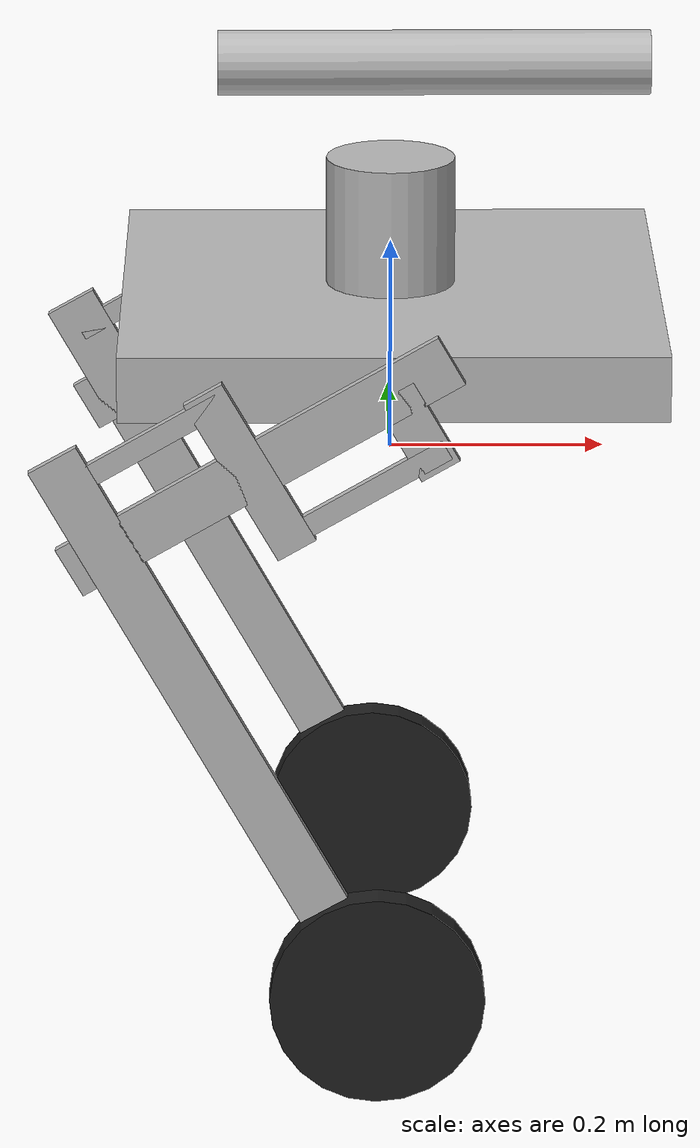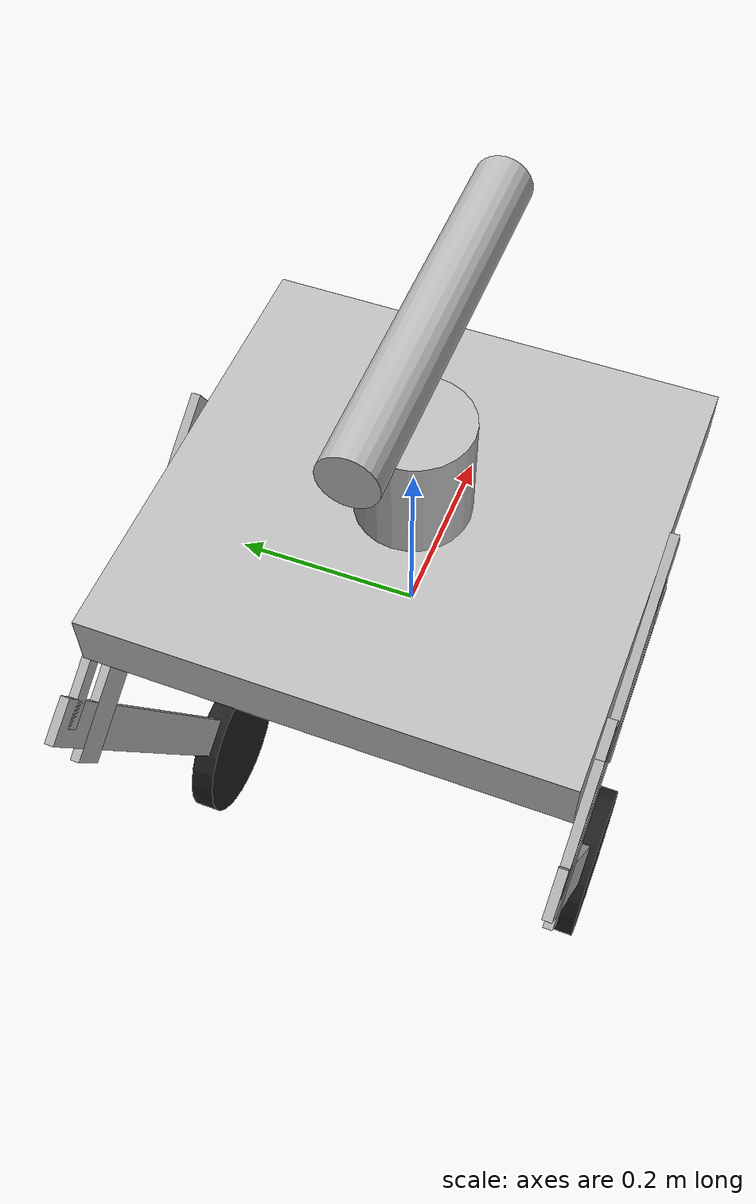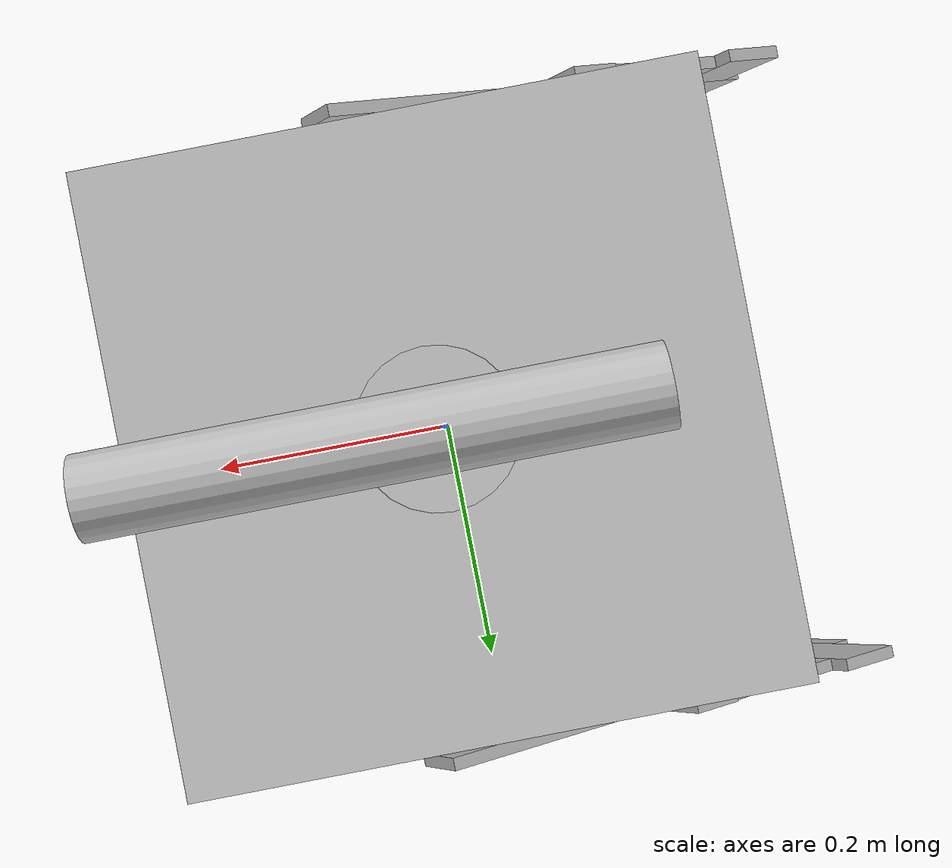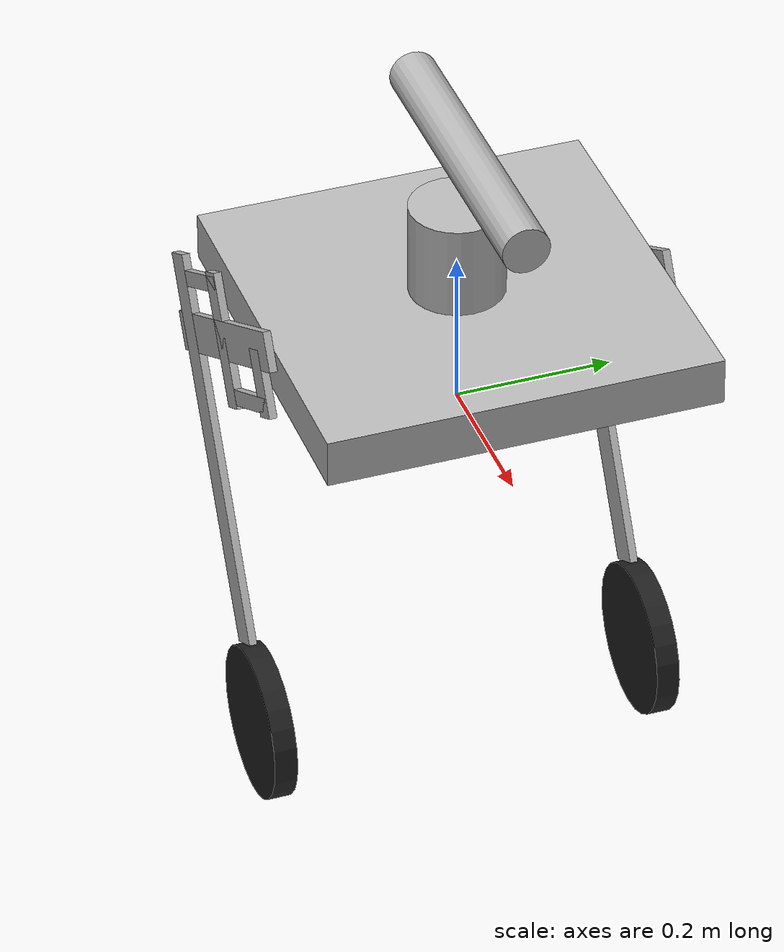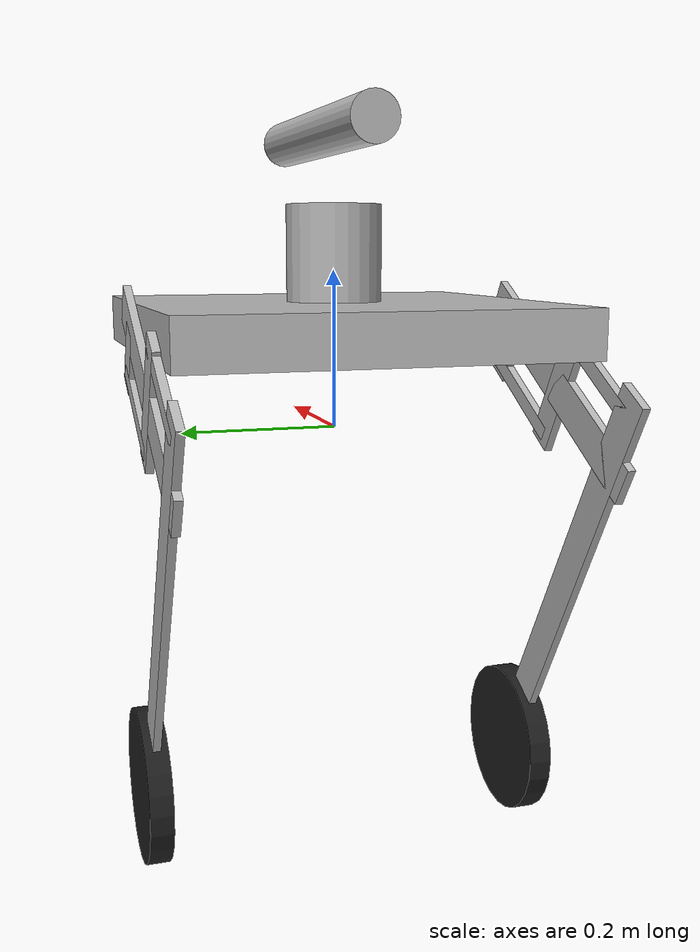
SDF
<sdf version='1.7'>
  <model name='balance_bot'>
    <link name='base_footprint'>
      <inertial>
        <pose>-0.014993 0 0.1305 0 -0 0</pose>
        <mass>2.001</mass>
        <inertia>
          <ixx>0.04229</ixx>
          <ixy>0</ixy>
          <ixz>0</ixz>
          <iyy>0.0422902</iyy>
          <iyz>0</iyz>
          <izz>0.0833302</izz>
        </inertia>
      </inertial>
      <collision name='base_footprint_fixed_joint_lump__base_link_collision'>
        <pose>0 0 0.1305 0 -0 0</pose>
        <geometry>
          <box>
            <size>0.5 0.5 0.061</size>
          </box>
        </geometry>
      </collision>
      <visual name='base_footprint_fixed_joint_lump__base_link_visual'>
        <pose>0 0 0.1305 0 -0 0</pose>
        <geometry>
          <box>
            <size>0.5 0.5 0.061</size>
          </box>
        </geometry>
      </visual>
      <visual name='base_footprint_fixed_joint_lump__imu_link_visual_1'>
        <pose>0 0 0.1305 0 -0 0</pose>
        <geometry>
          <box>
            <size>0.01 0.01 0.01</size>
          </box>
        </geometry>
      </visual>
      <gravity>1</gravity>
      <sensor name='imu_sensor' type='imu'>
        <always_on>1</always_on>
        <update_rate>1000</update_rate>
        <visualize>1</visualize>
        <imu/>
        <plugin name='imu_plugin' filename='libgazebo_ros_imu_sensor.so'>
          <topicName>imu</topicName>
          <bodyName>imu_link</bodyName>
          <updateRateHZ>100.0</updateRateHZ>
          <gaussianNoise>0.0</gaussianNoise>
          <xyzOffset>0 0 0</xyzOffset>
          <rpyOffset>0 0 0</rpyOffset>
          <frameName>imu_link</frameName>
          <initialOrientationAsReference>0</initialOrientationAsReference>
        </plugin>
        <pose>0 0 0.1305 0 -0 0</pose>
      </sensor>
    </link>
    <joint name='gimbal_joint' type='revolute'>
      <pose relative_to='base_footprint'>0 0 0.221 0 -0 0</pose>
      <parent>base_footprint</parent>
      <child>gimbal_link</child>
      <axis>
        <xyz>0 0 1</xyz>
        <limit>
          <effort>3.07</effort>
          <velocity>70</velocity>
          <lower>-1e+16</lower>
          <upper>1e+16</upper>
        </limit>
        <dynamics>
          <spring_reference>0</spring_reference>
          <spring_stiffness>0</spring_stiffness>
        </dynamics>
      </axis>
    </joint>
    <link name='gimbal_link'>
      <pose relative_to='gimbal_joint'>0 0 0 0 -0 0</pose>
      <inertial>
        <pose>0 0 0 0 -0 0</pose>
        <mass>0.2</mass>
        <inertia>
          <ixx>0.00042</ixx>
          <ixy>0</ixy>
          <ixz>0</ixz>
          <iyy>0.00042</iyy>
          <iyz>0</iyz>
          <izz>0.00036</izz>
        </inertia>
      </inertial>
      <collision name='gimbal_link_collision'>
        <pose>0 0 0 0 -0 0</pose>
        <geometry>
          <cylinder>
            <length>0.12</length>
            <radius>0.06</radius>
          </cylinder>
        </geometry>
      </collision>
      <visual name='gimbal_link_visual'>
        <pose>0 0 0 0 -0 0</pose>
        <geometry>
          <cylinder>
            <length>0.12</length>
            <radius>0.06</radius>
          </cylinder>
        </geometry>
      </visual>
    </link>
    <joint name='muzzle_joint' type='revolute'>
      <pose relative_to='gimbal_link'>0 0 0.15 0 -0 0</pose>
      <parent>gimbal_link</parent>
      <child>muzzle_link</child>
      <axis>
        <xyz>0 1 0</xyz>
        <limit>
          <lower>-0.5</lower>
          <upper>0.24</upper>
          <effort>3</effort>
          <velocity>70</velocity>
        </limit>
        <dynamics>
          <spring_reference>0</spring_reference>
          <spring_stiffness>0</spring_stiffness>
        </dynamics>
      </axis>
    </joint>
    <link name='muzzle_link'>
      <pose relative_to='muzzle_joint'>0 0 0 0 -0 0</pose>
      <inertial>
        <pose>0 0 0 0 -0 0</pose>
        <mass>0.801</mass>
        <inertia>
          <ixx>0.000360017</ixx>
          <ixy>0</ixy>
          <ixz>0</ixz>
          <iyy>0.01085</iyy>
          <iyz>0</iyz>
          <izz>0.00790002</izz>
        </inertia>
      </inertial>
      <collision name='muzzle_link_collision'>
        <pose>0.2 0 0 0 1.5708 0</pose>
        <geometry>
          <cylinder>
            <length>0.4</length>
            <radius>0.03</radius>
          </cylinder>
        </geometry>
      </collision>
      <visual name='muzzle_link_visual'>
        <pose>0.04 0 0 0 1.5708 0</pose>
        <geometry>
          <cylinder>
            <length>0.4</length>
            <radius>0.03</radius>
          </cylinder>
        </geometry>
      </visual>
      <visual name='muzzle_link_fixed_joint_lump__gimbal_imu_link_visual_1'>
        <pose>0 0 0 0 -0 0</pose>
        <geometry>
          <box>
            <size>0.01 0.01 0.01</size>
          </box>
        </geometry>
      </visual>
      <gravity>1</gravity>
      <sensor name='muzzle_imu_sensor' type='imu'>
        <always_on>1</always_on>
        <update_rate>1000</update_rate>
        <visualize>1</visualize>
        <imu/>
        <plugin name='muzzle_imu_plugin' filename='libgazebo_ros_imu_sensor.so'>
          <topicName>gimbal_imu</topicName>
          <bodyName>gimbal_imu_link</bodyName>
          <updateRateHZ>100.0</updateRateHZ>
          <gaussianNoise>0.0</gaussianNoise>
          <xyzOffset>0 0 0</xyzOffset>
          <rpyOffset>0 0 0</rpyOffset>
          <frameName>muzzle_link</frameName>
          <initialOrientationAsReference>0</initialOrientationAsReference>
        </plugin>
        <pose>0 0 0 0 -0 0</pose>
      </sensor>
    </link>
    <joint name='left_hip_joint' type='revolute'>
      <pose relative_to='base_footprint'>0 0.255 0.1305 0 1.0472 0</pose>
      <parent>base_footprint</parent>
      <child>left_thigh_link</child>
      <axis>
        <xyz>0 1 0</xyz>
        <limit>
          <lower>-1e+16</lower>
          <upper>1e+16</upper>
        </limit>
        <dynamics>
          <spring_reference>0</spring_reference>
          <spring_stiffness>0</spring_stiffness>
        </dynamics>
      </axis>
    </joint>
    <link name='left_thigh_link'>
      <pose relative_to='left_hip_joint'>0 0 0 0 -0 0</pose>
      <inertial>
        <pose>0 0 0 0 -0 0</pose>
        <mass>0.1</mass>
        <inertia>
          <ixx>0.00133417</ixx>
          <ixy>0</ixy>
          <ixz>0</ixz>
          <iyy>2.16667e-05</iyy>
          <iyz>0</iyz>
          <izz>0.00135417</izz>
        </inertia>
      </inertial>
      <collision name='left_thigh_link_collision'>
        <pose>0 0 -0.14 0 -0 0</pose>
        <geometry>
          <box>
            <size>0.05 0.01 0.4</size>
          </box>
        </geometry>
      </collision>
      <visual name='left_thigh_link_visual'>
        <pose>0 0 -0.14 0 -0 0</pose>
        <geometry>
          <box>
            <size>0.05 0.01 0.4</size>
          </box>
        </geometry>
      </visual>
    </link>
    <joint name='left_knee_joint' type='revolute'>
      <pose relative_to='left_thigh_link'>0 0 -0.3 0 -1.56 0</pose>
      <parent>left_thigh_link</parent>
      <child>left_shank_link</child>
      <axis>
        <xyz>0 1 0</xyz>
        <limit>
          <lower>-0.72</lower>
          <upper>0.72</upper>
          <effort>3</effort>
          <velocity>70</velocity>
        </limit>
        <dynamics>
          <spring_reference>0</spring_reference>
          <spring_stiffness>0</spring_stiffness>
        </dynamics>
      </axis>
    </joint>
    <link name='left_shank_link'>
      <pose relative_to='left_knee_joint'>0 0 0 0 -0 0</pose>
      <inertial>
        <pose>0 0 0 0 -0 0</pose>
        <mass>0.1</mass>
        <inertia>
          <ixx>0.00208417</ixx>
          <ixy>0</ixy>
          <ixz>0</ixz>
          <iyy>2.16667e-05</iyy>
          <iyz>0</iyz>
          <izz>0.00210417</izz>
        </inertia>
      </inertial>
      <collision name='left_shank_link_collision'>
        <pose>0 0 -0.15 0 -0 0</pose>
        <geometry>
          <box>
            <size>0.05 0.01 0.5</size>
          </box>
        </geometry>
      </collision>
      <visual name='left_shank_link_visual'>
        <pose>0 0 -0.15 0 -0 0</pose>
        <geometry>
          <box>
            <size>0.05 0.01 0.5</size>
          </box>
        </geometry>
      </visual>
    </link>
    <joint name='left_wheel_joint' type='revolute'>
      <pose relative_to='left_shank_link'>0 0 -0.5 0 -0 0</pose>
      <parent>left_shank_link</parent>
      <child>left_wheel_link</child>
      <axis>
        <xyz>0 1 0</xyz>
        <limit>
          <effort>100</effort>
          <velocity>100</velocity>
          <lower>-1e+16</lower>
          <upper>1e+16</upper>
        </limit>
        <dynamics>
          <spring_reference>0</spring_reference>
          <spring_stiffness>0</spring_stiffness>
        </dynamics>
      </axis>
    </joint>
    <link name='left_wheel_link'>
      <pose relative_to='left_wheel_joint'>0 0 0 0 -0 0</pose>
      <inertial>
        <pose>0 0 0 0 -0 0</pose>
        <mass>0.5</mass>
        <inertia>
          <ixx>0.0012875</ixx>
          <ixy>0</ixy>
          <ixz>0</ixz>
          <iyy>0.0012875</iyy>
          <iyz>0</iyz>
          <izz>0.0025</izz>
        </inertia>
      </inertial>
      <collision name='left_wheel_link_collision'>
        <pose>0 0 0 1.5708 -0 0</pose>
        <geometry>
          <cylinder>
            <length>0.03</length>
            <radius>0.1</radius>
          </cylinder>
        </geometry>
        <surface>
          <contact>
            <ode>
              <kp>1e+06</kp>
              <kd>100</kd>
            </ode>
          </contact>
          <friction>
            <ode>
              <mu>1</mu>
              <mu2>1</mu2>
            </ode>
          </friction>
        </surface>
      </collision>
      <visual name='left_wheel_link_visual'>
        <pose>0 0 0 1.5708 -0 0</pose>
        <geometry>
          <cylinder>
            <length>0.03</length>
            <radius>0.1</radius>
          </cylinder>
        </geometry>
        <material>
          <script>
            <name>Gazebo/Black</name>
            <uri>file://media/materials/scripts/gazebo.material</uri>
          </script>
        </material>
      </visual>
    </link>
    <joint name='left_linkage_1_joint' type='revolute'>
      <pose relative_to='left_thigh_link'>0 0 -0.15 0 1.5708 0</pose>
      <parent>left_thigh_link</parent>
      <child>left_linkage_1</child>
      <axis>
        <xyz>0 1 0</xyz>
        <limit>
          <lower>-0.72</lower>
          <upper>0.72</upper>
          <effort>3</effort>
          <velocity>70</velocity>
        </limit>
        <dynamics>
          <spring_reference>0</spring_reference>
          <spring_stiffness>0</spring_stiffness>
        </dynamics>
      </axis>
    </joint>
    <link name='left_linkage_1'>
      <pose relative_to='left_linkage_1_joint'>0 0 0 0 -0 0</pose>
      <inertial>
        <pose>0 0 0 0 -0 0</pose>
        <mass>0.05</mass>
        <inertia>
          <ixx>0.000120833</ixx>
          <ixy>0</ixy>
          <ixz>0</ixz>
          <iyy>7.08333e-06</iyy>
          <iyz>0</iyz>
          <izz>0.000127083</izz>
        </inertia>
      </inertial>
      <visual name='left_linkage_1_visual'>
        <pose>0 0 0 0 -0 0</pose>
        <geometry>
          <box>
            <size>0.04 0.01 0.17</size>
          </box>
        </geometry>
      </visual>
    </link>
    <joint name='left_cross_conn_2_joint' type='revolute'>
      <pose relative_to='left_linkage_1'>0 0 -0.07 0 1.5708 0</pose>
      <parent>left_linkage_1</parent>
      <child>left_cross_conn_2</child>
      <axis>
        <xyz>0 1 0</xyz>
        <limit>
          <lower>-1e+16</lower>
          <upper>1e+16</upper>
        </limit>
        <dynamics>
          <spring_reference>0</spring_reference>
          <spring_stiffness>0</spring_stiffness>
        </dynamics>
      </axis>
    </joint>
    <link name='left_cross_conn_2'>
      <pose relative_to='left_cross_conn_2_joint'>0 0 0 0 -0 0</pose>
      <inertial>
        <pose>0 0 0 0 -0 0</pose>
        <mass>0.02</mass>
        <inertia>
          <ixx>4.83333e-05</ixx>
          <ixy>0</ixy>
          <ixz>0</ixz>
          <iyy>8.33333e-07</iyy>
          <iyz>0</iyz>
          <izz>4.88333e-05</izz>
        </inertia>
      </inertial>
      <visual name='left_cross_conn_2_visual'>
        <pose>0 0 0.07 0 -0 0</pose>
        <geometry>
          <box>
            <size>0.02 0.01 0.17</size>
          </box>
        </geometry>
      </visual>
    </link>
    <joint name='left_linkage_2_joint' type='revolute'>
      <pose relative_to='base_footprint'>0 0.255 0.1305 3.14159 0.523599 3.14159</pose>
      <parent>base_footprint</parent>
      <child>left_linkage_2</child>
      <axis>
        <xyz>0 1 0</xyz>
        <limit>
          <lower>-0.72</lower>
          <upper>0.72</upper>
          <effort>3</effort>
          <velocity>70</velocity>
        </limit>
        <dynamics>
          <spring_reference>0</spring_reference>
          <spring_stiffness>0</spring_stiffness>
        </dynamics>
      </axis>
    </joint>
    <link name='left_linkage_2'>
      <pose relative_to='left_linkage_2_joint'>0 0 0 0 -0 0</pose>
      <inertial>
        <pose>0 0 0 0 -0 0</pose>
        <mass>0.05</mass>
        <inertia>
          <ixx>3.05208e-05</ixx>
          <ixy>0</ixy>
          <ixz>0</ixz>
          <iyy>7.08333e-06</iyy>
          <iyz>0</iyz>
          <izz>3.67708e-05</izz>
        </inertia>
      </inertial>
      <visual name='left_linkage_2_visual'>
        <pose>0 0 0.0425 0 -0 0</pose>
        <geometry>
          <box>
            <size>0.04 0.01 0.085</size>
          </box>
        </geometry>
      </visual>
    </link>
    <joint name='left_cross_conn_1_joint' type='revolute'>
      <pose relative_to='left_linkage_2'>0 0 0.07 0 1.5708 0</pose>
      <parent>left_linkage_2</parent>
      <child>left_cross_conn_1</child>
      <axis>
        <xyz>0 1 0</xyz>
        <limit>
          <lower>-1e+16</lower>
          <upper>1e+16</upper>
        </limit>
        <dynamics>
          <spring_reference>0</spring_reference>
          <spring_stiffness>0</spring_stiffness>
        </dynamics>
      </axis>
    </joint>
    <link name='left_cross_conn_1'>
      <pose relative_to='left_cross_conn_1_joint'>0 0 0 0 -0 0</pose>
      <inertial>
        <pose>0 0 0 0 -0 0</pose>
        <mass>0.02</mass>
        <inertia>
          <ixx>4.83333e-05</ixx>
          <ixy>0</ixy>
          <ixz>0</ixz>
          <iyy>8.33333e-07</iyy>
          <iyz>0</iyz>
          <izz>4.88333e-05</izz>
        </inertia>
      </inertial>
      <visual name='left_cross_conn_1_visual'>
        <pose>0 0 0.07 0 -0 0</pose>
        <geometry>
          <box>
            <size>0.02 0.01 0.17</size>
          </box>
        </geometry>
      </visual>
    </link>
    <joint name='right_hip_joint' type='revolute'>
      <pose relative_to='base_footprint'>0 -0.255 0.1305 0 1.0472 0</pose>
      <parent>base_footprint</parent>
      <child>right_thigh_link</child>
      <axis>
        <xyz>0 1 0</xyz>
        <limit>
          <lower>-1e+16</lower>
          <upper>1e+16</upper>
        </limit>
        <dynamics>
          <spring_reference>0</spring_reference>
          <spring_stiffness>0</spring_stiffness>
        </dynamics>
      </axis>
    </joint>
    <link name='right_thigh_link'>
      <pose relative_to='right_hip_joint'>0 0 0 0 -0 0</pose>
      <inertial>
        <pose>0 0 0 0 -0 0</pose>
        <mass>0.1</mass>
        <inertia>
          <ixx>0.00133417</ixx>
          <ixy>0</ixy>
          <ixz>0</ixz>
          <iyy>2.16667e-05</iyy>
          <iyz>0</iyz>
          <izz>0.00135417</izz>
        </inertia>
      </inertial>
      <collision name='right_thigh_link_collision'>
        <pose>0 0 -0.14 0 -0 0</pose>
        <geometry>
          <box>
            <size>0.05 0.01 0.4</size>
          </box>
        </geometry>
      </collision>
      <visual name='right_thigh_link_visual'>
        <pose>0 0 -0.14 0 -0 0</pose>
        <geometry>
          <box>
            <size>0.05 0.01 0.4</size>
          </box>
        </geometry>
      </visual>
    </link>
    <joint name='right_knee_joint' type='revolute'>
      <pose relative_to='right_thigh_link'>0 0 -0.3 0 -1.56 0</pose>
      <parent>right_thigh_link</parent>
      <child>right_shank_link</child>
      <axis>
        <xyz>0 1 0</xyz>
        <limit>
          <lower>-0.72</lower>
          <upper>0.72</upper>
          <effort>3</effort>
          <velocity>70</velocity>
        </limit>
        <dynamics>
          <spring_reference>0</spring_reference>
          <spring_stiffness>0</spring_stiffness>
        </dynamics>
      </axis>
    </joint>
    <link name='right_shank_link'>
      <pose relative_to='right_knee_joint'>0 0 0 0 -0 0</pose>
      <inertial>
        <pose>0 0 0 0 -0 0</pose>
        <mass>0.1</mass>
        <inertia>
          <ixx>0.00208417</ixx>
          <ixy>0</ixy>
          <ixz>0</ixz>
          <iyy>2.16667e-05</iyy>
          <iyz>0</iyz>
          <izz>0.00210417</izz>
        </inertia>
      </inertial>
      <collision name='right_shank_link_collision'>
        <pose>0 0 -0.15 0 -0 0</pose>
        <geometry>
          <box>
            <size>0.05 0.01 0.5</size>
          </box>
        </geometry>
      </collision>
      <visual name='right_shank_link_visual'>
        <pose>0 0 -0.15 0 -0 0</pose>
        <geometry>
          <box>
            <size>0.05 0.01 0.5</size>
          </box>
        </geometry>
      </visual>
    </link>
    <joint name='right_wheel_joint' type='revolute'>
      <pose relative_to='right_shank_link'>0 0 -0.5 0 -0 0</pose>
      <parent>right_shank_link</parent>
      <child>right_wheel_link</child>
      <axis>
        <xyz>0 1 0</xyz>
        <limit>
          <effort>100</effort>
          <velocity>100</velocity>
          <lower>-1e+16</lower>
          <upper>1e+16</upper>
        </limit>
        <dynamics>
          <spring_reference>0</spring_reference>
          <spring_stiffness>0</spring_stiffness>
        </dynamics>
      </axis>
    </joint>
    <link name='right_wheel_link'>
      <pose relative_to='right_wheel_joint'>0 0 0 0 -0 0</pose>
      <inertial>
        <pose>0 0 0 0 -0 0</pose>
        <mass>0.5</mass>
        <inertia>
          <ixx>0.0012875</ixx>
          <ixy>0</ixy>
          <ixz>0</ixz>
          <iyy>0.0012875</iyy>
          <iyz>0</iyz>
          <izz>0.0025</izz>
        </inertia>
      </inertial>
      <collision name='right_wheel_link_collision'>
        <pose>0 0 0 1.5708 -0 0</pose>
        <geometry>
          <cylinder>
            <length>0.03</length>
            <radius>0.1</radius>
          </cylinder>
        </geometry>
        <surface>
          <contact>
            <ode>
              <kp>1e+06</kp>
              <kd>100</kd>
            </ode>
          </contact>
          <friction>
            <ode>
              <mu>1</mu>
              <mu2>1</mu2>
            </ode>
          </friction>
        </surface>
      </collision>
      <visual name='right_wheel_link_visual'>
        <pose>0 0 0 1.5708 -0 0</pose>
        <geometry>
          <cylinder>
            <length>0.03</length>
            <radius>0.1</radius>
          </cylinder>
        </geometry>
        <material>
          <script>
            <name>Gazebo/Black</name>
            <uri>file://media/materials/scripts/gazebo.material</uri>
          </script>
        </material>
      </visual>
    </link>
    <joint name='right_linkage_1_joint' type='revolute'>
      <pose relative_to='right_thigh_link'>0 0 -0.15 0 1.5708 0</pose>
      <parent>right_thigh_link</parent>
      <child>right_linkage_1</child>
      <axis>
        <xyz>0 1 0</xyz>
        <limit>
          <lower>-0.72</lower>
          <upper>0.72</upper>
          <effort>3</effort>
          <velocity>70</velocity>
        </limit>
        <dynamics>
          <spring_reference>0</spring_reference>
          <spring_stiffness>0</spring_stiffness>
        </dynamics>
      </axis>
    </joint>
    <link name='right_linkage_1'>
      <pose relative_to='right_linkage_1_joint'>0 0 0 0 -0 0</pose>
      <inertial>
        <pose>0 0 0 0 -0 0</pose>
        <mass>0.05</mass>
        <inertia>
          <ixx>0.000120833</ixx>
          <ixy>0</ixy>
          <ixz>0</ixz>
          <iyy>7.08333e-06</iyy>
          <iyz>0</iyz>
          <izz>0.000127083</izz>
        </inertia>
      </inertial>
      <visual name='right_linkage_1_visual'>
        <pose>0 0 0 0 -0 0</pose>
        <geometry>
          <box>
            <size>0.04 0.01 0.17</size>
          </box>
        </geometry>
      </visual>
    </link>
    <joint name='right_cross_conn_2_joint' type='revolute'>
      <pose relative_to='right_linkage_1'>0 0 -0.07 0 1.5708 0</pose>
      <parent>right_linkage_1</parent>
      <child>right_cross_conn_2</child>
      <axis>
        <xyz>0 1 0</xyz>
        <limit>
          <lower>-1e+16</lower>
          <upper>1e+16</upper>
        </limit>
        <dynamics>
          <spring_reference>0</spring_reference>
          <spring_stiffness>0</spring_stiffness>
        </dynamics>
      </axis>
    </joint>
    <link name='right_cross_conn_2'>
      <pose relative_to='right_cross_conn_2_joint'>0 0 0 0 -0 0</pose>
      <inertial>
        <pose>0 0 0 0 -0 0</pose>
        <mass>0.02</mass>
        <inertia>
          <ixx>4.83333e-05</ixx>
          <ixy>0</ixy>
          <ixz>0</ixz>
          <iyy>8.33333e-07</iyy>
          <iyz>0</iyz>
          <izz>4.88333e-05</izz>
        </inertia>
      </inertial>
      <visual name='right_cross_conn_2_visual'>
        <pose>0 0 0.07 0 -0 0</pose>
        <geometry>
          <box>
            <size>0.02 0.01 0.17</size>
          </box>
        </geometry>
      </visual>
    </link>
    <joint name='right_linkage_2_joint' type='revolute'>
      <pose relative_to='base_footprint'>0 -0.255 0.1305 3.14159 0.523599 3.14159</pose>
      <parent>base_footprint</parent>
      <child>right_linkage_2</child>
      <axis>
        <xyz>0 1 0</xyz>
        <limit>
          <lower>-0.72</lower>
          <upper>0.72</upper>
          <effort>3</effort>
          <velocity>70</velocity>
        </limit>
        <dynamics>
          <spring_reference>0</spring_reference>
          <spring_stiffness>0</spring_stiffness>
        </dynamics>
      </axis>
    </joint>
    <link name='right_linkage_2'>
      <pose relative_to='right_linkage_2_joint'>0 0 0 0 -0 0</pose>
      <inertial>
        <pose>0 0 0 0 -0 0</pose>
        <mass>0.05</mass>
        <inertia>
          <ixx>3.05208e-05</ixx>
          <ixy>0</ixy>
          <ixz>0</ixz>
          <iyy>7.08333e-06</iyy>
          <iyz>0</iyz>
          <izz>3.67708e-05</izz>
        </inertia>
      </inertial>
      <visual name='right_linkage_2_visual'>
        <pose>0 0 0.0425 0 -0 0</pose>
        <geometry>
          <box>
            <size>0.04 0.01 0.085</size>
          </box>
        </geometry>
      </visual>
    </link>
    <joint name='right_cross_conn_1_joint' type='revolute'>
      <pose relative_to='right_linkage_2'>0 0 0.07 0 1.5708 0</pose>
      <parent>right_linkage_2</parent>
      <child>right_cross_conn_1</child>
      <axis>
        <xyz>0 1 0</xyz>
        <limit>
          <lower>-1e+16</lower>
          <upper>1e+16</upper>
        </limit>
        <dynamics>
          <spring_reference>0</spring_reference>
          <spring_stiffness>0</spring_stiffness>
        </dynamics>
      </axis>
    </joint>
    <link name='right_cross_conn_1'>
      <pose relative_to='right_cross_conn_1_joint'>0 0 0 0 -0 0</pose>
      <inertial>
        <pose>0 0 0 0 -0 0</pose>
        <mass>0.02</mass>
        <inertia>
          <ixx>4.83333e-05</ixx>
          <ixy>0</ixy>
          <ixz>0</ixz>
          <iyy>8.33333e-07</iyy>
          <iyz>0</iyz>
          <izz>4.88333e-05</izz>
        </inertia>
      </inertial>
      <visual name='right_cross_conn_1_visual'>
        <pose>0 0 0.07 0 -0 0</pose>
        <geometry>
          <box>
            <size>0.02 0.01 0.17</size>
          </box>
        </geometry>
      </visual>
    </link>
    <joint name='left_cross_conn_1_loop_joint' type='revolute'>
      <parent>left_cross_conn_1</parent>
      <child>left_linkage_1</child>
      <axis>
        <xyz>0 1 0</xyz>
        <limit>
          <lower>-1e+16</lower>
          <upper>1e+16</upper>
        </limit>
      </axis>
      <pose>0 0 -0.07 0 -0 0</pose>
    </joint>
    <joint name='left_cross_conn_2_loop_joint' type='revolute'>
      <parent>left_cross_conn_2</parent>
      <child>left_shank_link</child>
      <axis>
        <xyz>0 1 0</xyz>
        <limit>
          <lower>-1e+16</lower>
          <upper>1e+16</upper>
        </limit>
      </axis>
      <pose>0 0 -0.07 0 -0 0</pose>
    </joint>
    <joint name='right_cross_conn_1_loop_joint' type='revolute'>
      <parent>right_cross_conn_1</parent>
      <child>right_linkage_1</child>
      <axis>
        <xyz>0 1 0</xyz>
        <limit>
          <lower>-1e+16</lower>
          <upper>1e+16</upper>
        </limit>
      </axis>
      <pose>0 0 -0.07 0 -0 0</pose>
    </joint>
    <joint name='right_cross_conn_2_loop_joint' type='revolute'>
      <parent>right_cross_conn_2</parent>
      <child>right_shank_link</child>
      <axis>
        <xyz>0 1 0</xyz>
        <limit>
          <lower>-1e+16</lower>
          <upper>1e+16</upper>
        </limit>
      </axis>
      <pose>0 0 -0.07 0 -0 0</pose>
    </joint>
    <plugin name='gazebo_ros_control' filename='libgazebo_ros_control.so'>
      <robotNamespace>/</robotNamespace>
    </plugin>
    <frame name='imu_joint' attached_to='base_link'>
      <pose>0 0 0 0 -0 0</pose>
    </frame>
    <frame name='imu_link' attached_to='imu_joint'/>
    <frame name='base_joint' attached_to='base_footprint'>
      <pose>0 0 0.1305 0 -0 0</pose>
    </frame>
    <frame name='base_link' attached_to='base_joint'/>
    <frame name='gimbal_imu_joint' attached_to='muzzle_link'>
      <pose>0 0 0 0 -0 0</pose>
    </frame>
    <frame name='gimbal_imu_link' attached_to='gimbal_imu_joint'/>
  </model>
</sdf>
